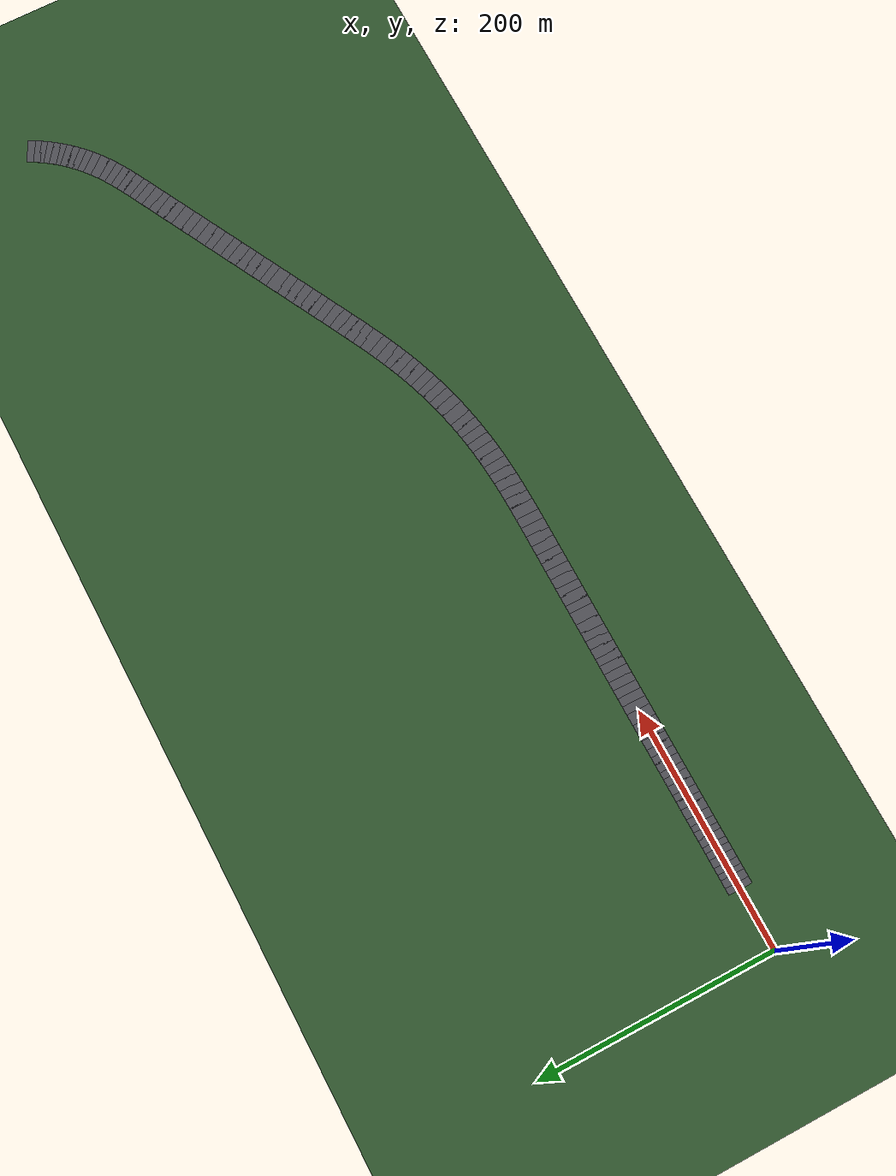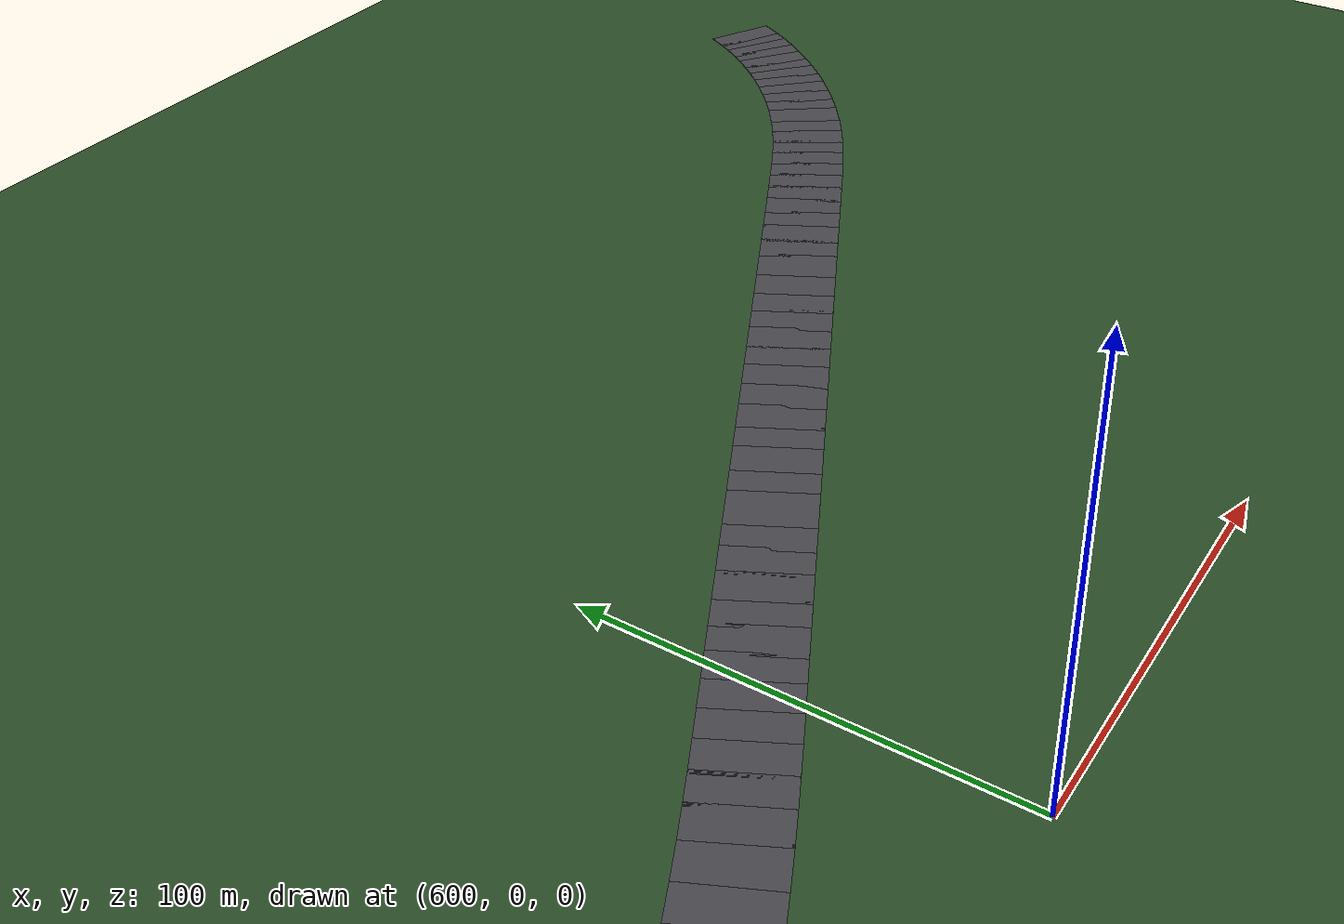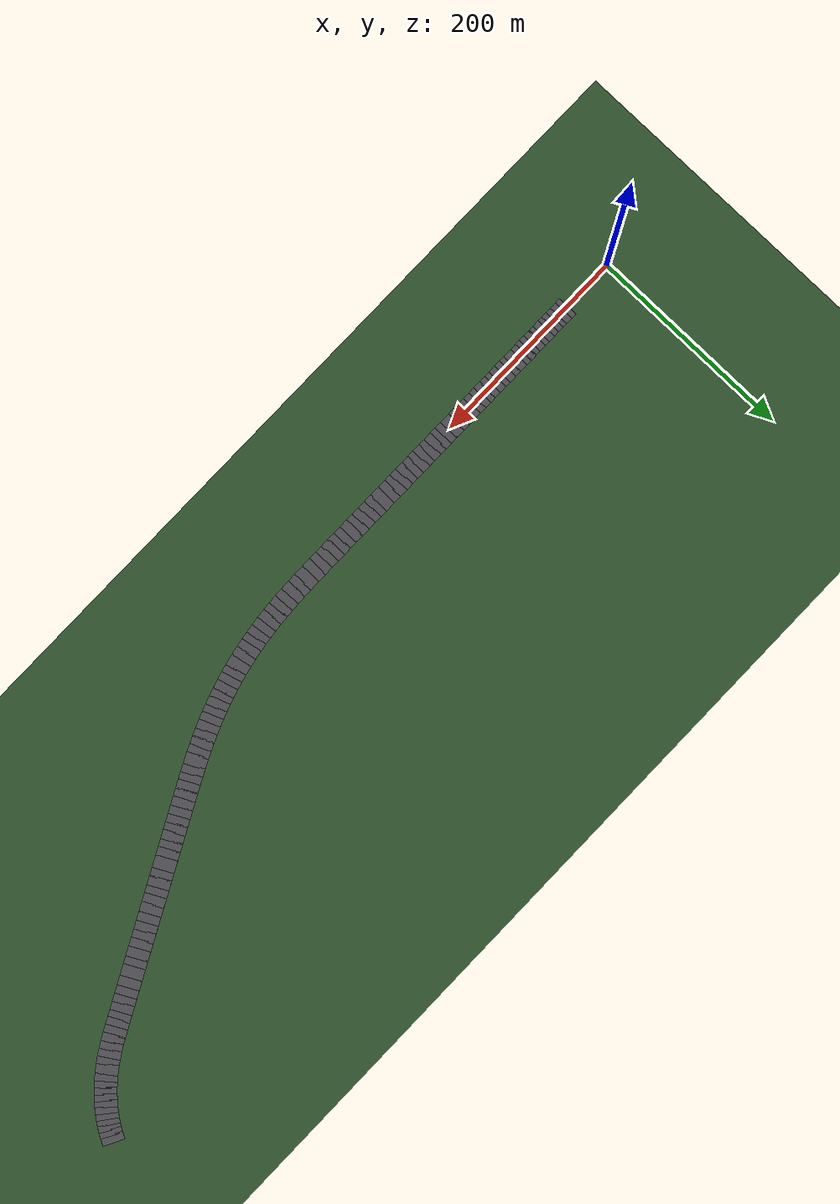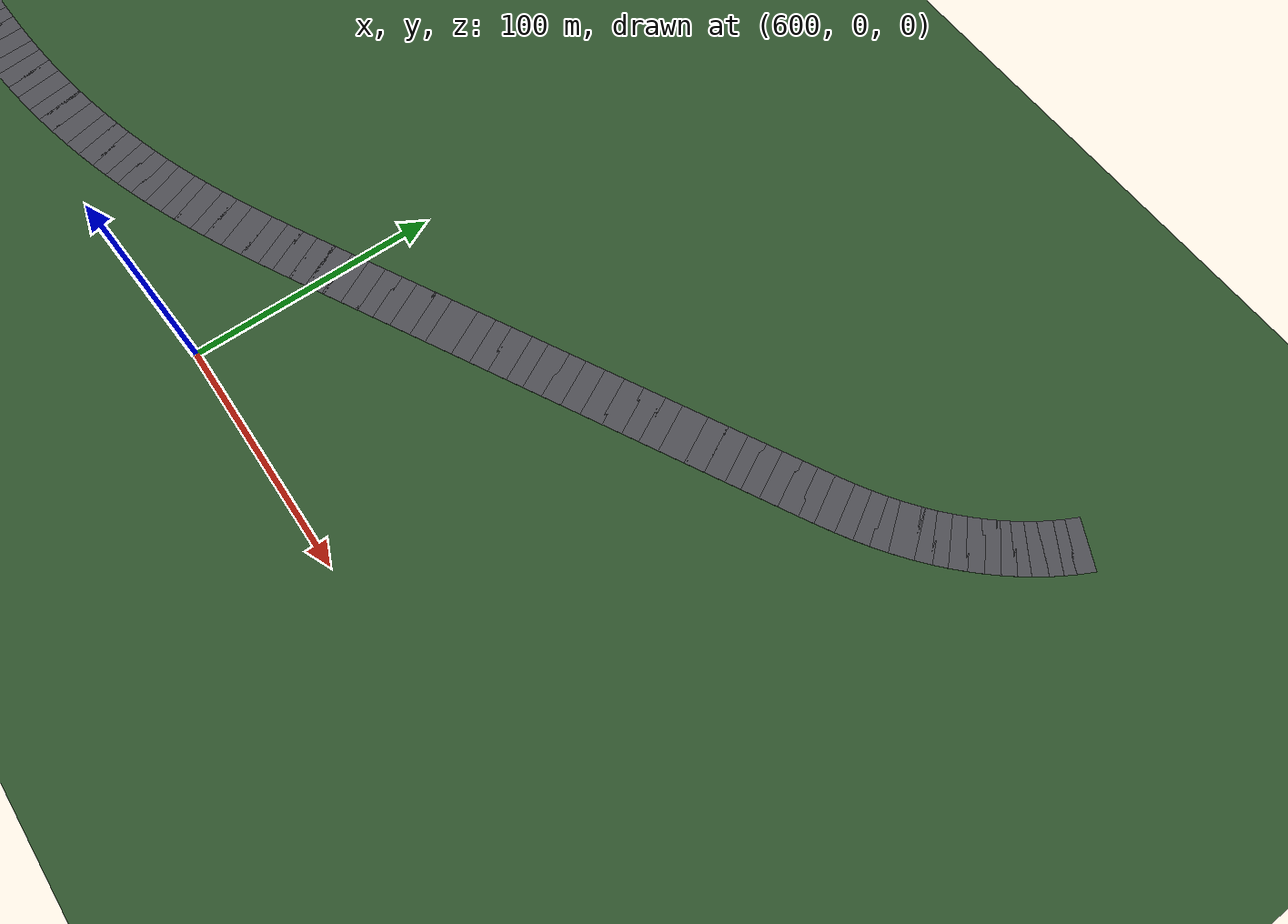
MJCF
<mujoco model="f1_setup_opt_part_2">
  <option gravity="0 0 -9.81" timestep="0.005"/>
  <visual>
    <headlight diffuse=".9 .9 .9" ambient=".25 .25 .25" specular="0 0 0"/>
    <rgba haze="0.30 0.36 0.45 1"/>
    <global offwidth="1280" offheight="720"/>
    <quality shadowsize="4096"/>
  </visual>
  <asset>
    <texture type="skybox" builtin="gradient" rgb1="0.55 0.7 0.92" rgb2="0.15 0.20 0.35"
             width="800" height="800"/>
    <texture name="grass_tex" type="2d" builtin="checker"
             rgb1="0.20 0.35 0.18" rgb2="0.13 0.25 0.13"
             width="200" height="200"/>
    <material name="grass" texture="grass_tex" texrepeat="60 60"
              reflectance="0.0" specular="0.05"/>
    <material name="asphalt" rgba="0.28 0.28 0.30 1" specular="0.20" shininess="0.20"/>
    <material name="chassis_red"    rgba="0.90 0.10 0.10 1" specular="0.75" shininess="0.7"/>
    <material name="chassis_yellow" rgba="0.95 0.80 0.10 1" specular="0.75" shininess="0.7"/>
    <material name="halo" rgba="0.05 0.05 0.05 1" specular="0.4" shininess="0.5"/>
    <material name="tyre" rgba="0.05 0.05 0.05 1" specular="0.2" shininess="0.2"/>
    <material name="wing" rgba="0.10 0.10 0.12 1" specular="0.4" shininess="0.5"/>
  </asset>
  <worldbody>
    <light name="sun" diffuse="1.0 0.95 0.85" pos="500 -500 600" dir="-0.6 0.6 -0.8"
           castshadow="true"/>
    <light name="fill" diffuse="0.30 0.35 0.50" pos="-300 300 400" dir="0.5 -0.5 -0.6"
           castshadow="false"/>
    <!-- Ground plane (grass) -->
    <geom name="ground" type="plane" pos="448.4 108.6 0"
          size="1087 1087 1" material="grass"/>
    <!-- Asphalt centerline strip (corner-region only) -->
    <geom type="box" pos="53.23 0.00 0.02" size="3.22 10.0 0.02" quat="1.0000 0 0 0.0000" material="asphalt" contype="0" conaffinity="0"/>
      <geom type="box" pos="58.69 0.00 0.02" size="3.23 10.0 0.02" quat="1.0000 0 0 0.0000" material="asphalt" contype="0" conaffinity="0"/>
      <geom type="box" pos="64.17 0.00 0.02" size="3.25 10.0 0.02" quat="1.0000 0 0 0.0000" material="asphalt" contype="0" conaffinity="0"/>
      <geom type="box" pos="69.70 0.00 0.02" size="3.27 10.0 0.02" quat="1.0000 0 0 0.0000" material="asphalt" contype="0" conaffinity="0"/>
      <geom type="box" pos="75.27 0.00 0.02" size="3.30 10.0 0.02" quat="1.0000 0 0 0.0000" material="asphalt" contype="0" conaffinity="0"/>
      <geom type="box" pos="80.90 0.00 0.02" size="3.33 10.0 0.02" quat="1.0000 0 0 0.0000" material="asphalt" contype="0" conaffinity="0"/>
      <geom type="box" pos="86.58 0.00 0.02" size="3.36 10.0 0.02" quat="1.0000 0 0 0.0000" material="asphalt" contype="0" conaffinity="0"/>
      <geom type="box" pos="92.34 0.00 0.02" size="3.39 10.0 0.02" quat="1.0000 0 0 0.0000" material="asphalt" contype="0" conaffinity="0"/>
      <geom type="box" pos="98.15 0.00 0.02" size="3.43 10.0 0.02" quat="1.0000 0 0 0.0000" material="asphalt" contype="0" conaffinity="0"/>
      <geom type="box" pos="104.04 0.00 0.02" size="3.46 10.0 0.02" quat="1.0000 0 0 0.0000" material="asphalt" contype="0" conaffinity="0"/>
      <geom type="box" pos="109.99 0.00 0.02" size="3.50 10.0 0.02" quat="1.0000 0 0 0.0000" material="asphalt" contype="0" conaffinity="0"/>
      <geom type="box" pos="117.04 0.00 0.02" size="4.55 10.0 0.02" quat="1.0000 0 0 0.0000" material="asphalt" contype="0" conaffinity="0"/>
      <geom type="box" pos="124.16 0.00 0.02" size="3.58 10.0 0.02" quat="1.0000 0 0 0.0000" material="asphalt" contype="0" conaffinity="0"/>
      <geom type="box" pos="130.35 0.00 0.02" size="3.61 10.0 0.02" quat="1.0000 0 0 0.0000" material="asphalt" contype="0" conaffinity="0"/>
      <geom type="box" pos="136.61 0.00 0.02" size="3.65 10.0 0.02" quat="1.0000 0 0 0.0000" material="asphalt" contype="0" conaffinity="0"/>
      <geom type="box" pos="142.94 0.00 0.02" size="3.68 10.0 0.02" quat="1.0000 0 0 0.0000" material="asphalt" contype="0" conaffinity="0"/>
      <geom type="box" pos="149.34 0.00 0.02" size="3.72 10.0 0.02" quat="1.0000 0 0 0.0000" material="asphalt" contype="0" conaffinity="0"/>
      <geom type="box" pos="155.80 0.00 0.02" size="3.75 10.0 0.02" quat="1.0000 0 0 0.0000" material="asphalt" contype="0" conaffinity="0"/>
      <geom type="box" pos="162.32 0.00 0.02" size="3.77 10.0 0.02" quat="1.0000 0 0 0.0000" material="asphalt" contype="0" conaffinity="0"/>
      <geom type="box" pos="168.88 0.00 0.02" size="3.79 10.0 0.02" quat="1.0000 0 0 0.0000" material="asphalt" contype="0" conaffinity="0"/>
      <geom type="box" pos="175.49 0.00 0.02" size="3.82 10.0 0.02" quat="1.0000 0 0 0.0000" material="asphalt" contype="0" conaffinity="0"/>
      <geom type="box" pos="182.16 0.00 0.02" size="3.85 10.0 0.02" quat="1.0000 0 0 0.0000" material="asphalt" contype="0" conaffinity="0"/>
      <geom type="box" pos="188.89 0.00 0.02" size="3.88 10.0 0.02" quat="1.0000 0 0 0.0000" material="asphalt" contype="0" conaffinity="0"/>
      <geom type="box" pos="196.83 0.00 0.02" size="5.06 10.0 0.02" quat="1.0000 0 0 0.0000" material="asphalt" contype="0" conaffinity="0"/>
      <geom type="box" pos="204.84 0.00 0.02" size="3.95 10.0 0.02" quat="1.0000 0 0 0.0000" material="asphalt" contype="0" conaffinity="0"/>
      <geom type="box" pos="211.78 0.00 0.02" size="3.98 10.0 0.02" quat="1.0000 0 0 0.0000" material="asphalt" contype="0" conaffinity="0"/>
      <geom type="box" pos="218.78 0.00 0.02" size="4.01 10.0 0.02" quat="1.0000 0 0 0.0000" material="asphalt" contype="0" conaffinity="0"/>
      <geom type="box" pos="225.83 0.00 0.02" size="4.04 10.0 0.02" quat="1.0000 0 0 0.0000" material="asphalt" contype="0" conaffinity="0"/>
      <geom type="box" pos="232.94 0.00 0.02" size="4.07 10.0 0.02" quat="1.0000 0 0 0.0000" material="asphalt" contype="0" conaffinity="0"/>
      <geom type="box" pos="240.11 0.00 0.02" size="4.10 10.0 0.02" quat="1.0000 0 0 0.0000" material="asphalt" contype="0" conaffinity="0"/>
      <geom type="box" pos="247.33 0.00 0.02" size="4.12 10.0 0.02" quat="1.0000 0 0 0.0000" material="asphalt" contype="0" conaffinity="0"/>
      <geom type="box" pos="254.60 0.00 0.02" size="4.15 10.0 0.02" quat="1.0000 0 0 0.0000" material="asphalt" contype="0" conaffinity="0"/>
      <geom type="box" pos="261.93 0.00 0.02" size="4.18 10.0 0.02" quat="1.0000 0 0 0.0000" material="asphalt" contype="0" conaffinity="0"/>
      <geom type="box" pos="269.30 0.00 0.02" size="4.20 10.0 0.02" quat="1.0000 0 0 0.0000" material="asphalt" contype="0" conaffinity="0"/>
      <geom type="box" pos="276.73 0.00 0.02" size="4.23 10.0 0.02" quat="1.0000 0 0 0.0000" material="asphalt" contype="0" conaffinity="0"/>
      <geom type="box" pos="285.46 0.00 0.02" size="5.50 10.0 0.02" quat="1.0000 0 0 0.0000" material="asphalt" contype="0" conaffinity="0"/>
      <geom type="box" pos="294.24 0.00 0.02" size="4.28 10.0 0.02" quat="1.0000 0 0 0.0000" material="asphalt" contype="0" conaffinity="0"/>
      <geom type="box" pos="301.82 0.00 0.02" size="4.30 10.0 0.02" quat="1.0000 0 0 0.0000" material="asphalt" contype="0" conaffinity="0"/>
      <geom type="box" pos="309.45 0.00 0.02" size="4.32 10.0 0.02" quat="1.0000 0 0 0.0000" material="asphalt" contype="0" conaffinity="0"/>
      <geom type="box" pos="317.12 0.00 0.02" size="4.35 10.0 0.02" quat="1.0000 0 0 0.0000" material="asphalt" contype="0" conaffinity="0"/>
      <geom type="box" pos="324.83 0.00 0.02" size="4.37 10.0 0.02" quat="1.0000 0 0 0.0000" material="asphalt" contype="0" conaffinity="0"/>
      <geom type="box" pos="332.58 0.00 0.02" size="4.39 10.0 0.02" quat="1.0000 0 0 0.0000" material="asphalt" contype="0" conaffinity="0"/>
      <geom type="box" pos="340.38 0.00 0.02" size="4.41 10.0 0.02" quat="1.0000 0 0 0.0000" material="asphalt" contype="0" conaffinity="0"/>
      <geom type="box" pos="348.21 0.00 0.02" size="4.43 10.0 0.02" quat="1.0000 0 0 0.0000" material="asphalt" contype="0" conaffinity="0"/>
      <geom type="box" pos="356.08 0.00 0.02" size="4.44 10.0 0.02" quat="1.0000 0 0 0.0001" material="asphalt" contype="0" conaffinity="0"/>
      <geom type="box" pos="363.98 0.01 0.02" size="4.46 10.0 0.02" quat="1.0000 0 0 0.0008" material="asphalt" contype="0" conaffinity="0"/>
      <geom type="box" pos="371.93 0.04 0.02" size="4.48 10.0 0.02" quat="1.0000 0 0 0.0025" material="asphalt" contype="0" conaffinity="0"/>
      <geom type="box" pos="381.24 0.12 0.02" size="5.83 10.0 0.02" quat="1.0000 0 0 0.0059" material="asphalt" contype="0" conaffinity="0"/>
      <geom type="box" pos="390.58 0.27 0.02" size="4.51 10.0 0.02" quat="0.9999 0 0 0.0109" material="asphalt" contype="0" conaffinity="0"/>
      <geom type="box" pos="398.59 0.49 0.02" size="4.51 10.0 0.02" quat="0.9999 0 0 0.0164" material="asphalt" contype="0" conaffinity="0"/>
      <geom type="box" pos="406.60 0.80 0.02" size="4.50 10.0 0.02" quat="0.9997 0 0 0.0230" material="asphalt" contype="0" conaffinity="0"/>
      <geom type="box" pos="414.57 1.23 0.02" size="4.48 10.0 0.02" quat="0.9995 0 0 0.0305" material="asphalt" contype="0" conaffinity="0"/>
      <geom type="box" pos="422.49 1.78 0.02" size="4.45 10.0 0.02" quat="0.9992 0 0 0.0391" material="asphalt" contype="0" conaffinity="0"/>
      <geom type="box" pos="430.34 2.47 0.02" size="4.42 10.0 0.02" quat="0.9988 0 0 0.0485" material="asphalt" contype="0" conaffinity="0"/>
      <geom type="box" pos="438.11 3.30 0.02" size="4.39 10.0 0.02" quat="0.9983 0 0 0.0585" material="asphalt" contype="0" conaffinity="0"/>
      <geom type="box" pos="445.80 4.29 0.02" size="4.36 10.0 0.02" quat="0.9976 0 0 0.0688" material="asphalt" contype="0" conaffinity="0"/>
      <geom type="box" pos="453.42 5.42 0.02" size="4.34 10.0 0.02" quat="0.9969 0 0 0.0792" material="asphalt" contype="0" conaffinity="0"/>
      <geom type="box" pos="460.96 6.71 0.02" size="4.31 10.0 0.02" quat="0.9960 0 0 0.0896" material="asphalt" contype="0" conaffinity="0"/>
      <geom type="box" pos="468.42 8.14 0.02" size="4.29 10.0 0.02" quat="0.9950 0 0 0.0999" material="asphalt" contype="0" conaffinity="0"/>
      <geom type="box" pos="477.03 10.01 0.02" size="5.52 10.0 0.02" quat="0.9937 0 0 0.1119" material="asphalt" contype="0" conaffinity="0"/>
      <geom type="box" pos="485.56 12.05 0.02" size="4.24 10.0 0.02" quat="0.9923 0 0 0.1238" material="asphalt" contype="0" conaffinity="0"/>
      <geom type="box" pos="492.78 13.96 0.02" size="4.23 10.0 0.02" quat="0.9910 0 0 0.1341" material="asphalt" contype="0" conaffinity="0"/>
      <geom type="box" pos="499.93 16.02 0.02" size="4.21 10.0 0.02" quat="0.9895 0 0 0.1443" material="asphalt" contype="0" conaffinity="0"/>
      <geom type="box" pos="507.02 18.21 0.02" size="4.20 10.0 0.02" quat="0.9880 0 0 0.1545" material="asphalt" contype="0" conaffinity="0"/>
      <geom type="box" pos="514.03 20.54 0.02" size="4.19 10.0 0.02" quat="0.9863 0 0 0.1647" material="asphalt" contype="0" conaffinity="0"/>
      <geom type="box" pos="520.98 23.00 0.02" size="4.18 10.0 0.02" quat="0.9846 0 0 0.1749" material="asphalt" contype="0" conaffinity="0"/>
      <geom type="box" pos="527.86 25.60 0.02" size="4.17 10.0 0.02" quat="0.9828 0 0 0.1847" material="asphalt" contype="0" conaffinity="0"/>
      <geom type="box" pos="534.67 28.33 0.02" size="4.17 10.0 0.02" quat="0.9810 0 0 0.1940" material="asphalt" contype="0" conaffinity="0"/>
      <geom type="box" pos="541.44 31.19 0.02" size="4.17 10.0 0.02" quat="0.9793 0 0 0.2025" material="asphalt" contype="0" conaffinity="0"/>
      <geom type="box" pos="548.15 34.15 0.02" size="4.17 10.0 0.02" quat="0.9777 0 0 0.2102" material="asphalt" contype="0" conaffinity="0"/>
      <geom type="box" pos="554.84 37.22 0.02" size="4.18 10.0 0.02" quat="0.9762 0 0 0.2170" material="asphalt" contype="0" conaffinity="0"/>
      <geom type="box" pos="562.60 40.92 0.02" size="5.42 10.0 0.02" quat="0.9747 0 0 0.2237" material="asphalt" contype="0" conaffinity="0"/>
      <geom type="box" pos="570.34 44.72 0.02" size="4.20 10.0 0.02" quat="0.9734 0 0 0.2291" material="asphalt" contype="0" conaffinity="0"/>
      <geom type="box" pos="576.96 48.05 0.02" size="4.21 10.0 0.02" quat="0.9725 0 0 0.2327" material="asphalt" contype="0" conaffinity="0"/>
      <geom type="box" pos="583.59 51.44 0.02" size="4.23 10.0 0.02" quat="0.9719 0 0 0.2353" material="asphalt" contype="0" conaffinity="0"/>
      <geom type="box" pos="590.22 54.86 0.02" size="4.24 10.0 0.02" quat="0.9716 0 0 0.2368" material="asphalt" contype="0" conaffinity="0"/>
      <geom type="box" pos="596.87 58.32 0.02" size="4.26 10.0 0.02" quat="0.9714 0 0 0.2374" material="asphalt" contype="0" conaffinity="0"/>
      <geom type="box" pos="603.55 61.79 0.02" size="4.27 10.0 0.02" quat="0.9714 0 0 0.2376" material="asphalt" contype="0" conaffinity="0"/>
      <geom type="box" pos="610.26 65.28 0.02" size="4.29 10.0 0.02" quat="0.9714 0 0 0.2376" material="asphalt" contype="0" conaffinity="0"/>
      <geom type="box" pos="616.99 68.78 0.02" size="4.30 10.0 0.02" quat="0.9714 0 0 0.2375" material="asphalt" contype="0" conaffinity="0"/>
      <geom type="box" pos="623.75 72.30 0.02" size="4.32 10.0 0.02" quat="0.9714 0 0 0.2375" material="asphalt" contype="0" conaffinity="0"/>
      <geom type="box" pos="630.54 75.83 0.02" size="4.34 10.0 0.02" quat="0.9714 0 0 0.2375" material="asphalt" contype="0" conaffinity="0"/>
      <geom type="box" pos="637.37 79.38 0.02" size="4.35 10.0 0.02" quat="0.9714 0 0 0.2375" material="asphalt" contype="0" conaffinity="0"/>
      <geom type="box" pos="645.37 83.54 0.02" size="5.66 10.0 0.02" quat="0.9714 0 0 0.2375" material="asphalt" contype="0" conaffinity="0"/>
      <geom type="box" pos="653.40 87.72 0.02" size="4.39 10.0 0.02" quat="0.9714 0 0 0.2375" material="asphalt" contype="0" conaffinity="0"/>
      <geom type="box" pos="660.33 91.32 0.02" size="4.41 10.0 0.02" quat="0.9714 0 0 0.2375" material="asphalt" contype="0" conaffinity="0"/>
      <geom type="box" pos="667.28 94.93 0.02" size="4.43 10.0 0.02" quat="0.9714 0 0 0.2375" material="asphalt" contype="0" conaffinity="0"/>
      <geom type="box" pos="674.26 98.57 0.02" size="4.44 10.0 0.02" quat="0.9714 0 0 0.2375" material="asphalt" contype="0" conaffinity="0"/>
      <geom type="box" pos="681.28 102.21 0.02" size="4.46 10.0 0.02" quat="0.9714 0 0 0.2375" material="asphalt" contype="0" conaffinity="0"/>
      <geom type="box" pos="688.32 105.88 0.02" size="4.48 10.0 0.02" quat="0.9714 0 0 0.2375" material="asphalt" contype="0" conaffinity="0"/>
      <geom type="box" pos="695.39 109.56 0.02" size="4.49 10.0 0.02" quat="0.9714 0 0 0.2375" material="asphalt" contype="0" conaffinity="0"/>
      <geom type="box" pos="702.49 113.25 0.02" size="4.51 10.0 0.02" quat="0.9714 0 0 0.2375" material="asphalt" contype="0" conaffinity="0"/>
      <geom type="box" pos="709.59 116.94 0.02" size="4.50 10.0 0.02" quat="0.9714 0 0 0.2375" material="asphalt" contype="0" conaffinity="0"/>
      <geom type="box" pos="716.66 120.62 0.02" size="4.47 10.0 0.02" quat="0.9714 0 0 0.2375" material="asphalt" contype="0" conaffinity="0"/>
      <geom type="box" pos="723.66 124.26 0.02" size="4.43 10.0 0.02" quat="0.9714 0 0 0.2375" material="asphalt" contype="0" conaffinity="0"/>
      <geom type="box" pos="731.72 128.45 0.02" size="5.65 10.0 0.02" quat="0.9714 0 0 0.2375" material="asphalt" contype="0" conaffinity="0"/>
      <geom type="box" pos="739.65 132.58 0.02" size="4.29 10.0 0.02" quat="0.9714 0 0 0.2375" material="asphalt" contype="0" conaffinity="0"/>
      <geom type="box" pos="746.31 136.04 0.02" size="4.22 10.0 0.02" quat="0.9714 0 0 0.2375" material="asphalt" contype="0" conaffinity="0"/>
      <geom type="box" pos="752.85 139.44 0.02" size="4.15 10.0 0.02" quat="0.9714 0 0 0.2375" material="asphalt" contype="0" conaffinity="0"/>
      <geom type="box" pos="759.27 142.78 0.02" size="4.08 10.0 0.02" quat="0.9714 0 0 0.2375" material="asphalt" contype="0" conaffinity="0"/>
      <geom type="box" pos="765.57 146.06 0.02" size="4.02 10.0 0.02" quat="0.9714 0 0 0.2375" material="asphalt" contype="0" conaffinity="0"/>
      <geom type="box" pos="771.75 149.28 0.02" size="3.95 10.0 0.02" quat="0.9712 0 0 0.2382" material="asphalt" contype="0" conaffinity="0"/>
      <geom type="box" pos="777.80 152.47 0.02" size="3.89 10.0 0.02" quat="0.9703 0 0 0.2418" material="asphalt" contype="0" conaffinity="0"/>
      <geom type="box" pos="783.70 155.66 0.02" size="3.82 10.0 0.02" quat="0.9683 0 0 0.2498" material="asphalt" contype="0" conaffinity="0"/>
      <geom type="box" pos="789.42 158.92 0.02" size="3.76 10.0 0.02" quat="0.9650 0 0 0.2623" material="asphalt" contype="0" conaffinity="0"/>
      <geom type="box" pos="794.92 162.27 0.02" size="3.69 10.0 0.02" quat="0.9606 0 0 0.2778" material="asphalt" contype="0" conaffinity="0"/>
      <geom type="box" pos="800.19 165.72 0.02" size="3.61 10.0 0.02" quat="0.9554 0 0 0.2952" material="asphalt" contype="0" conaffinity="0"/>
      <geom type="box" pos="805.99 169.90 0.02" size="4.54 10.0 0.02" quat="0.9486 0 0 0.3164" material="asphalt" contype="0" conaffinity="0"/>
      <geom type="box" pos="811.49 174.20 0.02" size="3.44 10.0 0.02" quat="0.9412 0 0 0.3379" material="asphalt" contype="0" conaffinity="0"/>
      <geom type="box" pos="815.90 177.98 0.02" size="3.37 10.0 0.02" quat="0.9344 0 0 0.3561" material="asphalt" contype="0" conaffinity="0"/>
      <geom type="box" pos="820.06 181.84 0.02" size="3.30 10.0 0.02" quat="0.9274 0 0 0.3741" material="asphalt" contype="0" conaffinity="0"/>
      <geom type="box" pos="823.97 185.75 0.02" size="3.23 10.0 0.02" quat="0.9200 0 0 0.3920" material="asphalt" contype="0" conaffinity="0"/>
      <geom type="box" pos="827.63 189.71 0.02" size="3.16 10.0 0.02" quat="0.9122 0 0 0.4097" material="asphalt" contype="0" conaffinity="0"/>
      <geom type="box" pos="831.05 193.71 0.02" size="3.10 10.0 0.02" quat="0.9041 0 0 0.4274" material="asphalt" contype="0" conaffinity="0"/>
      <geom type="box" pos="834.23 197.73 0.02" size="3.03 10.0 0.02" quat="0.8955 0 0 0.4451" material="asphalt" contype="0" conaffinity="0"/>
      <geom type="box" pos="837.16 201.77 0.02" size="2.96 10.0 0.02" quat="0.8865 0 0 0.4627" material="asphalt" contype="0" conaffinity="0"/>
      <geom type="box" pos="839.86 205.81 0.02" size="2.90 10.0 0.02" quat="0.8771 0 0 0.4804" material="asphalt" contype="0" conaffinity="0"/>
      <geom type="box" pos="842.32 209.84 0.02" size="2.83 10.0 0.02" quat="0.8672 0 0 0.4980" material="asphalt" contype="0" conaffinity="0"/>
      <geom type="box" pos="844.89 214.52 0.02" size="3.51 10.0 0.02" quat="0.8552 0 0 0.5183" material="asphalt" contype="0" conaffinity="0"/>

    <body name="car_baseline" pos="0 0 0.36000000000000004">
      <joint name="car_baseline_free" type="free"/>
      <inertial pos="0 0 0" mass="830" diaginertia="200 1350 1500"/>
      <!-- Chassis box -->
      <geom name="car_baseline_chassis" type="box"
            size="2.750 0.900 0.300"
            pos="0 0 0.35"
            material="chassis_red"/>
      <!-- Halo arch (carbon) -->
      <geom name="car_baseline_halo" type="capsule"
            fromto="0 -0.8 0.7
                    0 0.8 0.7"
            size="0.05" material="halo"/>
      <!-- Rear wing -->
      <geom name="car_baseline_rear_wing" type="box"
            size="0.1 1.200 0.04"
            pos="-2.550 0 1.05"
            material="wing"/>
      <geom name="car_baseline_rear_wing_endL" type="box" size="0.1 0.04 0.30"
            pos="-2.550 1.200 0.8"
            material="wing"/>
      <geom name="car_baseline_rear_wing_endR" type="box" size="0.1 0.04 0.30"
            pos="-2.550 -1.200 0.8"
            material="wing"/>
      <!-- Front wing -->
      <geom name="car_baseline_front_wing" type="box"
            size="0.08 1.200 0.04"
            pos="2.700 0 0.10"
            material="wing"/>
      <!-- 4 wheels -->
      <geom name="car_baseline_wheel_FL" type="cylinder" size="0.340 0.180"
            pos="1.625  0.800 0.340"
            quat="0.7071 0.7071 0 0" material="tyre"/>
      <geom name="car_baseline_wheel_FR" type="cylinder" size="0.340 0.180"
            pos="1.625 -0.800 0.340"
            quat="0.7071 0.7071 0 0" material="tyre"/>
      <geom name="car_baseline_wheel_RL" type="cylinder" size="0.340 0.180"
            pos="-1.625  0.800 0.340"
            quat="0.7071 0.7071 0 0" material="tyre"/>
      <geom name="car_baseline_wheel_RR" type="cylinder" size="0.340 0.180"
            pos="-1.625 -0.800 0.340"
            quat="0.7071 0.7071 0 0" material="tyre"/>
    </body>

    <body name="car_optimised" pos="0 0 0.36000000000000004">
      <joint name="car_optimised_free" type="free"/>
      <inertial pos="0 0 0" mass="830" diaginertia="200 1350 1500"/>
      <!-- Chassis box -->
      <geom name="car_optimised_chassis" type="box"
            size="2.750 0.900 0.300"
            pos="0 0 0.35"
            material="chassis_yellow"/>
      <!-- Halo arch (carbon) -->
      <geom name="car_optimised_halo" type="capsule"
            fromto="0 -0.8 0.7
                    0 0.8 0.7"
            size="0.05" material="halo"/>
      <!-- Rear wing -->
      <geom name="car_optimised_rear_wing" type="box"
            size="0.1 1.200 0.04"
            pos="-2.550 0 1.05"
            material="wing"/>
      <geom name="car_optimised_rear_wing_endL" type="box" size="0.1 0.04 0.30"
            pos="-2.550 1.200 0.8"
            material="wing"/>
      <geom name="car_optimised_rear_wing_endR" type="box" size="0.1 0.04 0.30"
            pos="-2.550 -1.200 0.8"
            material="wing"/>
      <!-- Front wing -->
      <geom name="car_optimised_front_wing" type="box"
            size="0.08 1.200 0.04"
            pos="2.700 0 0.10"
            material="wing"/>
      <!-- 4 wheels -->
      <geom name="car_optimised_wheel_FL" type="cylinder" size="0.340 0.180"
            pos="1.625  0.800 0.340"
            quat="0.7071 0.7071 0 0" material="tyre"/>
      <geom name="car_optimised_wheel_FR" type="cylinder" size="0.340 0.180"
            pos="1.625 -0.800 0.340"
            quat="0.7071 0.7071 0 0" material="tyre"/>
      <geom name="car_optimised_wheel_RL" type="cylinder" size="0.340 0.180"
            pos="-1.625  0.800 0.340"
            quat="0.7071 0.7071 0 0" material="tyre"/>
      <geom name="car_optimised_wheel_RR" type="cylinder" size="0.340 0.180"
            pos="-1.625 -0.800 0.340"
            quat="0.7071 0.7071 0 0" material="tyre"/>
    </body>
  </worldbody>
</mujoco>
